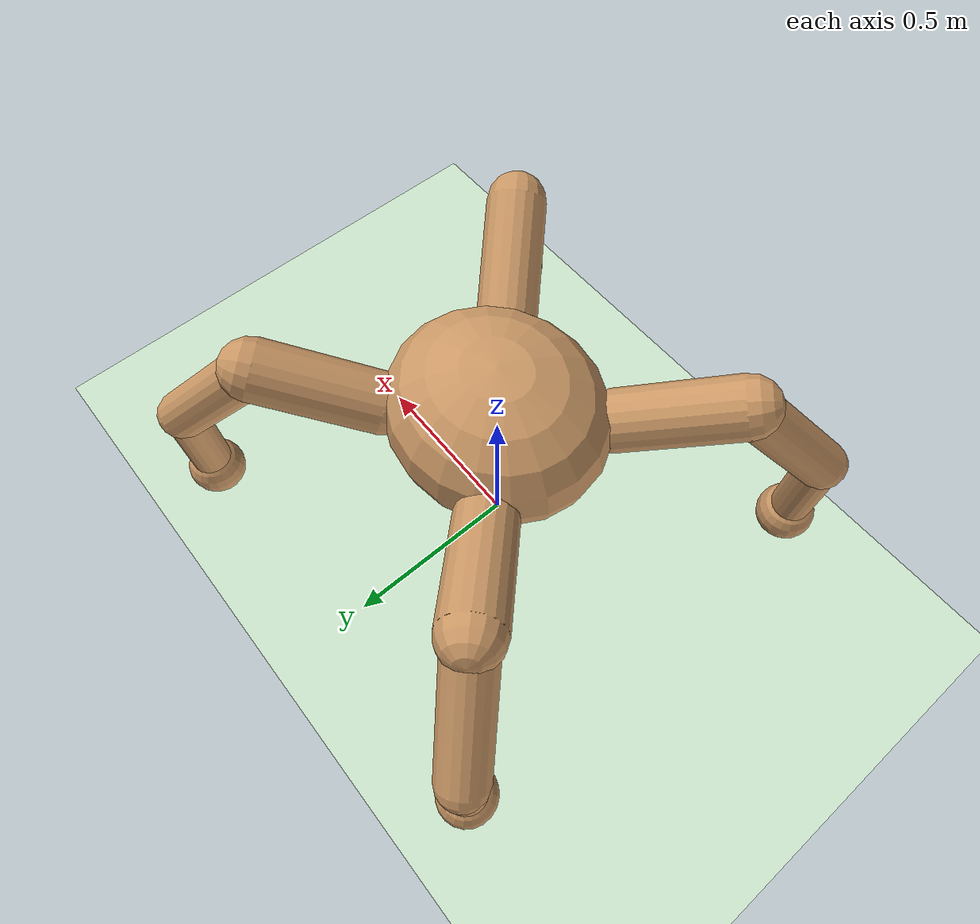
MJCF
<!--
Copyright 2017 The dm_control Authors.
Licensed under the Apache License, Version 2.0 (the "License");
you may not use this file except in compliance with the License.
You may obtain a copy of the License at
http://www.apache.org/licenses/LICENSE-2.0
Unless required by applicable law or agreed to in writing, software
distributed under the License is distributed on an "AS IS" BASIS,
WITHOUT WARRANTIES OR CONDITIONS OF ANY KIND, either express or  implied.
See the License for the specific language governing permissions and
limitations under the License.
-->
<mujoco model="quadruped">
  <compiler angle="degree" coordinate="local" inertiafromgeom="true"/>
  <option integrator="RK4" timestep="0.0025"/>
  <custom>
    <numeric data="0.0 0.0 0.0 1.0 0.0 0.0 0.0 0.0 0.0 0.0 0.0 0.0 0.0 0.0 0.0 0.0 0.0 0.0 0.0 0.0 0.0 0.0 0.0 0.0 0.0 0.0 0.0 0.0 0.0 0.0" name="init_qpos"/>
  </custom>
  <default>
    <joint armature="0.01" damping=".1" limited="true" solimplimit="0 .99 .01"/>
    <geom conaffinity="0" condim="3" friction=".7 .1 .1" margin="0.01" rgba="0.8 0.6 0.4 1"/>
    <motor ctrlrange="-1 1" ctrllimited="true"/>
    <site size="0.01"/>
    <default class="quadruped">
      <geom material="geom" type="capsule"/>
      <joint axis="0 -1 0"/>
    </default>
  </default>
  <asset>
    <texture builtin="gradient" height="100" rgb1="1 1 1" rgb2="0 0 0" type="skybox" width="100"/>
    <texture builtin="flat" height="1278" mark="cross" markrgb="1 1 1" name="texgeom" random="0.01" rgb1="0.8 0.6 0.4" rgb2="0.8 0.6 0.4" type="cube" width="127"/>
    <texture builtin="checker" height="100" name="texplane" rgb1="0 0 0" rgb2="0.8 0.8 0.8" type="2d" width="100"/>
    <material name="MatPlane" reflectance="0.5" shininess="1" specular="1" texrepeat="60 60" texture="texplane"/>
    <material name="geom" texture="texgeom" texuniform="true"/>
  </asset>
  <worldbody>
    <light cutoff="100" diffuse="1 1 1" dir="-0 0 -1.3" directional="true" exponent="1" pos="0 0 1.3" specular=".1 .1 .1"/>
    <geom conaffinity="1" condim="3" material="MatPlane" name="floor" pos="248 0 0" rgba="0.8 0.9 0.8 1" size="250 .8 .2" type="plane" zaxis="0 0 1"/>
    <body name="torso" pos="0 0 0.57" childclass="quadruped">
      <camera name="side" pos="0 -2 .7" euler="60 0 0" mode="trackcom"/>
      <camera name="back" pos="-2 0 .5" xyaxes="0 -1 0 1 0 3" mode="trackcom"/>
      <joint name="rootz" axis="0 0 1" type="slide" limited="false" armature="0" damping="0"/>
      <joint name="rootx" axis="1 0 0" type="slide" limited="false" armature="0" damping="0"/>
      <joint name="rooty" axis="0 1 0" type="hinge" limited="false" armature="0" damping="0"/>
      <geom name="torso" size="0.3 0.27 0.2" type="ellipsoid"/>

      <!-- Front Left Leg -->
      <body name="hip_front_left" pos="0.2 0.2 0" euler="0 0 45">
        <joint name="yaw_front_left" axis="0 0 1" range="-50 50"/>
        <joint name="pitch_front_left" axis="0 1 0" range="-20 60"/>
        <geom name="thigh_front_left" fromto="0 0 0 0.3 0 0.11" size="0.08"/>
        <body name="knee_front_left" pos="0.3 0 0.11">
          <joint name="knee_front_left" axis="0 1 0" range="-60 50"/>
          <geom name="shin_front_left" fromto="0 0 0 0.25 0 -0.25" size="0.065"/>
          <body name="ankle_front_left" pos="0.25 0 -0.25">
            <joint name="ankle_front_left" axis="0 1 0" range="-45 55"/>
            <geom name="foot_front_left" fromto="0 0 0 0 0 -0.25" size="0.055"/>
            <body name="toe_front_left" pos="0 0 -0.3">
              <geom name="toe_front_left" size="0.08" type="sphere" friction="1.5"/>
            </body>
          </body>
        </body>
      </body>

      <!-- Front Right Leg -->
      <body name="hip_front_right" pos="0.2 -0.2 0" euler="0 0 -45">
        <joint name="yaw_front_right" axis="0 0 1" range="-50 50"/>
        <joint name="pitch_front_right" axis="0 1 0" range="-20 60"/>
        <geom name="thigh_front_right" fromto="0 0 0 0.3 0 0.11" size="0.08"/>
        <body name="knee_front_right" pos="0.3 0 0.11">
          <joint name="knee_front_right" axis="0 1 0" range="-60 50"/>
          <geom name="shin_front_right" fromto="0 0 0 0.25 0 -0.25" size="0.065"/>
          <body name="ankle_front_right" pos="0.25 0 -0.25">
            <joint name="ankle_front_right" axis="0 1 0" range="-45 55"/>
            <geom name="foot_front_right" fromto="0 0 0 0 0 -0.25" size="0.055"/>
            <body name="toe_front_right" pos="0 0 -0.3">
              <geom name="toe_front_right" size="0.08" type="sphere" friction="1.5"/>
            </body>
          </body>
        </body>
      </body>

      <!-- Back Right Leg -->
      <body name="hip_back_right" pos="-0.2 -0.2 0" euler="0 0 -135">
        <joint name="yaw_back_right" axis="0 0 1" range="-50 50"/>
        <joint name="pitch_back_right" axis="0 1 0" range="-20 60"/>
        <geom name="thigh_back_right" fromto="0 0 0 0.3 0 0.11" size="0.08"/>
        <body name="knee_back_right" pos="0.3 0 0.11">
          <joint name="knee_back_right" axis="0 1 0" range="-60 50"/>
          <geom name="shin_back_right" fromto="0 0 0 0.25 0 -0.25" size="0.065"/>
          <body name="ankle_back_right" pos="0.25 0 -0.25">
            <joint name="ankle_back_right" axis="0 1 0" range="-45 55"/>
            <geom name="foot_back_right" fromto="0 0 0 0 0 -0.25" size="0.055"/>
            <body name="toe_back_right" pos="0 0 -0.3">
              <geom name="toe_back_right" size="0.08" type="sphere" friction="1.5"/>
            </body>
          </body>
        </body>
      </body>

      <!-- Back Left Leg -->
      <body name="hip_back_left" pos="-0.2 0.2 0" euler="0 0 135">
        <joint name="yaw_back_left" axis="0 0 1" range="-50 50"/>
        <joint name="pitch_back_left" axis="0 1 0" range="-20 60"/>
        <geom name="thigh_back_left" fromto="0 0 0 0.3 0 0.11" size="0.08"/>
        <body name="knee_back_left" pos="0.3 0 0.11">
          <joint name="knee_back_left" axis="0 1 0" range="-60 50"/>
          <geom name="shin_back_left" fromto="0 0 0 0.25 0 -0.25" size="0.065"/>
          <body name="ankle_back_left" pos="0.25 0 -0.25">
            <joint name="ankle_back_left" axis="0 1 0" range="-45 55"/>
            <geom name="foot_back_left" fromto="0 0 0 0 0 -0.25" size="0.055"/>
            <body name="toe_back_left" pos="0 0 -0.3">
              <geom name="toe_back_left" size="0.08" type="sphere" friction="1.5"/>
            </body>
          </body>
        </body>
      </body>
    </body>
  </worldbody>
  <sensor>
    <subtreelinvel name="torso_subtreelinvel" body="torso"/>
  </sensor>
  <actuator>
    <!-- Front Left Leg -->
    <motor name="yaw_front_left" joint="yaw_front_left" gear="100"/>
    <motor name="pitch_front_left" joint="pitch_front_left" gear="100"/>
    <motor name="knee_front_left" joint="knee_front_left" gear="50"/>
    <motor name="ankle_front_left" joint="ankle_front_left" gear="20"/>

    <!-- Front Right Leg -->
    <motor name="yaw_front_right" joint="yaw_front_right" gear="100"/>
    <motor name="pitch_front_right" joint="pitch_front_right" gear="100"/>
    <motor name="knee_front_right" joint="knee_front_right" gear="50"/>
    <motor name="ankle_front_right" joint="ankle_front_right" gear="20"/>

    <!-- Back Right Leg -->
    <motor name="yaw_back_right" joint="yaw_back_right" gear="100"/>
    <motor name="pitch_back_right" joint="pitch_back_right" gear="100"/>
    <motor name="knee_back_right" joint="knee_back_right" gear="50"/>
    <motor name="ankle_back_right" joint="ankle_back_right" gear="20"/>

    <!-- Back Left Leg -->
    <motor name="yaw_back_left" joint="yaw_back_left" gear="100"/>
    <motor name="pitch_back_left" joint="pitch_back_left" gear="100"/>
    <motor name="knee_back_left" joint="knee_back_left" gear="50"/>
    <motor name="ankle_back_left" joint="ankle_back_left" gear="20"/>
  </actuator>
</mujoco>
